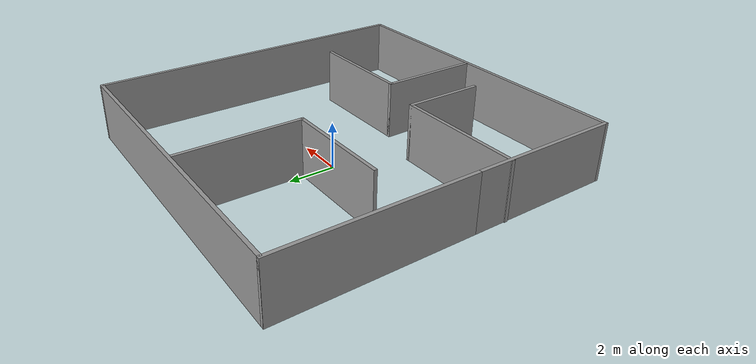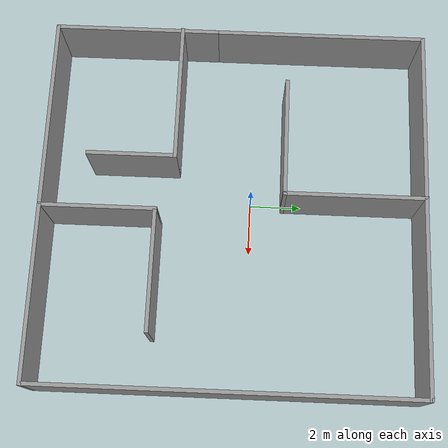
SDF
<?xml version='1.0'?>
<sdf version='1.7'>
  <model name='room'>
    <pose>0.521471 -0.67 0 0 -0 0</pose>
    <link name='Wall_11'>
      <collision name='Wall_11_Collision'>
        <geometry>
          <box>
            <size>5.5 0.15 2.5</size>
          </box>
        </geometry>
        <pose>0 0 1.25 0 -0 0</pose>
      </collision>
      <visual name='Wall_11_Visual'>
        <pose>0 0 1.25 0 -0 0</pose>
        <geometry>
          <box>
            <size>5.5 0.15 2.5</size>
          </box>
        </geometry>
        <material>
          <script>
            <uri>file://media/materials/scripts/gazebo.material</uri>
            <name>Gazebo/Grey</name>
          </script>
          <ambient>1 1 1 1</ambient>
        </material>
        <meta>
          <layer>0</layer>
        </meta>
      </visual>
      <pose>-4.39353 -2.30156 0 0 -0 0</pose>
    </link>
    <link name='Wall_12'>
      <collision name='Wall_12_Collision'>
        <geometry>
          <box>
            <size>3.5 0.15 2.5</size>
          </box>
        </geometry>
        <pose>0 0 1.25 0 -0 0</pose>
      </collision>
      <visual name='Wall_12_Visual'>
        <pose>0 0 1.25 0 -0 0</pose>
        <geometry>
          <box>
            <size>3.5 0.15 2.5</size>
          </box>
        </geometry>
        <material>
          <script>
            <uri>file://media/materials/scripts/gazebo.material</uri>
            <name>Gazebo/Grey</name>
          </script>
          <ambient>1 1 1 1</ambient>
        </material>
        <meta>
          <layer>0</layer>
        </meta>
      </visual>
      <pose>-1.71853 -3.97656 0 0 -0 -1.5708</pose>
    </link>
    <link name='Wall_14'>
      <collision name='Wall_14_Collision'>
        <geometry>
          <box>
            <size>4.5 0.15 2.5</size>
          </box>
        </geometry>
        <pose>0 0 1.25 0 -0 0</pose>
      </collision>
      <visual name='Wall_14_Visual'>
        <pose>0 0 1.25 0 -0 0</pose>
        <geometry>
          <box>
            <size>4.5 0.15 2.5</size>
          </box>
        </geometry>
        <material>
          <script>
            <uri>file://media/materials/scripts/gazebo.material</uri>
            <name>Gazebo/Grey</name>
          </script>
          <ambient>1 1 1 1</ambient>
        </material>
        <meta>
          <layer>0</layer>
        </meta>
      </visual>
      <pose>0.42803 -5.10697 0 0 -0 1.5708</pose>
    </link>
    <link name='Wall_15'>
      <collision name='Wall_15_Collision'>
        <geometry>
          <box>
            <size>4.75 0.15 2.5</size>
          </box>
        </geometry>
        <pose>0 0 1.25 0 -0 0</pose>
      </collision>
      <visual name='Wall_15_Visual'>
        <pose>0 0 1.25 0 -0 0</pose>
        <geometry>
          <box>
            <size>4.75 0.15 2.5</size>
          </box>
        </geometry>
        <material>
          <script>
            <uri>file://media/materials/scripts/gazebo.material</uri>
            <name>Gazebo/Grey</name>
          </script>
          <ambient>1 1 1 1</ambient>
        </material>
        <meta>
          <layer>0</layer>
        </meta>
      </visual>
      <pose>2.72803 -2.93197 0 0 -0 0</pose>
    </link>
    <link name='Wall_2'>
      <collision name='Wall_2_Collision'>
        <geometry>
          <box>
            <size>8.25 0.15 2.5</size>
          </box>
        </geometry>
        <pose>0 0 1.25 0 -0 0</pose>
      </collision>
      <visual name='Wall_2_Visual'>
        <pose>0 0 1.25 0 -0 0</pose>
        <geometry>
          <box>
            <size>8.25 0.15 2.5</size>
          </box>
        </geometry>
        <material>
          <script>
            <uri>file://media/materials/scripts/gazebo.material</uri>
            <name>Gazebo/Grey</name>
          </script>
          <ambient>1 1 1 1</ambient>
        </material>
        <meta>
          <layer>0</layer>
        </meta>
      </visual>
      <pose>-7.03147 3.25 0 0 -0 1.5708</pose>
    </link>
    <link name='Wall_3'>
      <collision name='Wall_3_Collision'>
        <geometry>
          <box>
            <size>14.25 0.15 2.5</size>
          </box>
        </geometry>
        <pose>0 0 1.25 0 -0 0</pose>
      </collision>
      <visual name='Wall_3_Visual'>
        <pose>0 0 1.25 0 -0 0</pose>
        <geometry>
          <box>
            <size>14.25 0.15 2.5</size>
          </box>
        </geometry>
        <material>
          <script>
            <uri>file://media/materials/scripts/gazebo.material</uri>
            <name>Gazebo/Grey</name>
          </script>
          <ambient>1 1 1 1</ambient>
        </material>
        <meta>
          <layer>0</layer>
        </meta>
      </visual>
      <pose>0.018529 7.3 0 0 -0 0</pose>
    </link>
    <link name='Wall_4'>
      <collision name='Wall_4_Collision'>
        <geometry>
          <box>
            <size>14.75 0.15 2.5</size>
          </box>
        </geometry>
        <pose>0 0 1.25 0 -0 0</pose>
      </collision>
      <visual name='Wall_4_Visual'>
        <pose>0 0 1.25 0 -0 0</pose>
        <geometry>
          <box>
            <size>14.75 0.15 2.5</size>
          </box>
        </geometry>
        <material>
          <script>
            <uri>file://media/materials/scripts/gazebo.material</uri>
            <name>Gazebo/Grey</name>
          </script>
          <ambient>1 1 1 1</ambient>
        </material>
        <meta>
          <layer>0</layer>
        </meta>
      </visual>
      <pose>7.06853 0 0 0 -0 -1.5708</pose>
    </link>
    <link name='Wall_5'>
      <collision name='Wall_5_Collision'>
        <geometry>
          <box>
            <size>14.25 0.15 2.5</size>
          </box>
        </geometry>
        <pose>0 0 1.25 0 -0 0</pose>
      </collision>
      <visual name='Wall_5_Visual'>
        <pose>0 0 1.25 0 -0 0</pose>
        <geometry>
          <box>
            <size>14.25 0.15 2.5</size>
          </box>
        </geometry>
        <material>
          <script>
            <uri>file://media/materials/scripts/gazebo.material</uri>
            <name>Gazebo/Grey</name>
          </script>
          <ambient>1 1 1 1</ambient>
        </material>
        <meta>
          <layer>0</layer>
        </meta>
      </visual>
      <pose>0.018529 -7.3 0 0 -0 3.14159</pose>
    </link>
    <link name='Wall_6'>
      <collision name='Wall_6_Collision'>
        <geometry>
          <box>
            <size>6.5 0.15 2.5</size>
          </box>
        </geometry>
        <pose>0 0 1.25 0 -0 0</pose>
      </collision>
      <visual name='Wall_6_Visual'>
        <pose>0 0 1.25 0 -0 0</pose>
        <geometry>
          <box>
            <size>6.5 0.15 2.5</size>
          </box>
        </geometry>
        <material>
          <script>
            <uri>file://media/materials/scripts/gazebo.material</uri>
            <name>Gazebo/Grey</name>
          </script>
          <ambient>1 1 1 1</ambient>
        </material>
        <meta>
          <layer>0</layer>
        </meta>
      </visual>
      <pose>-7.03147 -4.125 0 0 -0 1.5708</pose>
    </link>
    <link name='Wall_8'>
      <collision name='Wall_8_Collision'>
        <geometry>
          <box>
            <size>5.5 0.15 2.5</size>
          </box>
        </geometry>
        <pose>0 0 1.25 0 -0 0</pose>
      </collision>
      <visual name='Wall_8_Visual'>
        <pose>0 0 1.25 0 -0 0</pose>
        <geometry>
          <box>
            <size>5.5 0.15 2.5</size>
          </box>
        </geometry>
        <material>
          <script>
            <uri>file://media/materials/scripts/gazebo.material</uri>
            <name>Gazebo/Grey</name>
          </script>
          <ambient>1 1 1 1</ambient>
        </material>
        <meta>
          <layer>0</layer>
        </meta>
      </visual>
      <pose>-0.376099 4.62111 0 0 -0 -1.5708</pose>
    </link>
    <link name='Wall_9'>
      <collision name='Wall_9_Collision'>
        <geometry>
          <box>
            <size>4.75 0.15 2.5</size>
          </box>
        </geometry>
        <pose>0 0 1.25 0 -0 0</pose>
      </collision>
      <visual name='Wall_9_Visual'>
        <pose>0 0 1.25 0 -0 0</pose>
        <geometry>
          <box>
            <size>4.75 0.15 2.5</size>
          </box>
        </geometry>
        <material>
          <script>
            <uri>file://media/materials/scripts/gazebo.material</uri>
            <name>Gazebo/Grey</name>
          </script>
          <ambient>1 1 1 1</ambient>
        </material>
        <meta>
          <layer>0</layer>
        </meta>
      </visual>
      <pose>-2.6761 1.94612 0 0 -0 3.14159</pose>
    </link>
    <static>1</static>
  </model>
</sdf>
